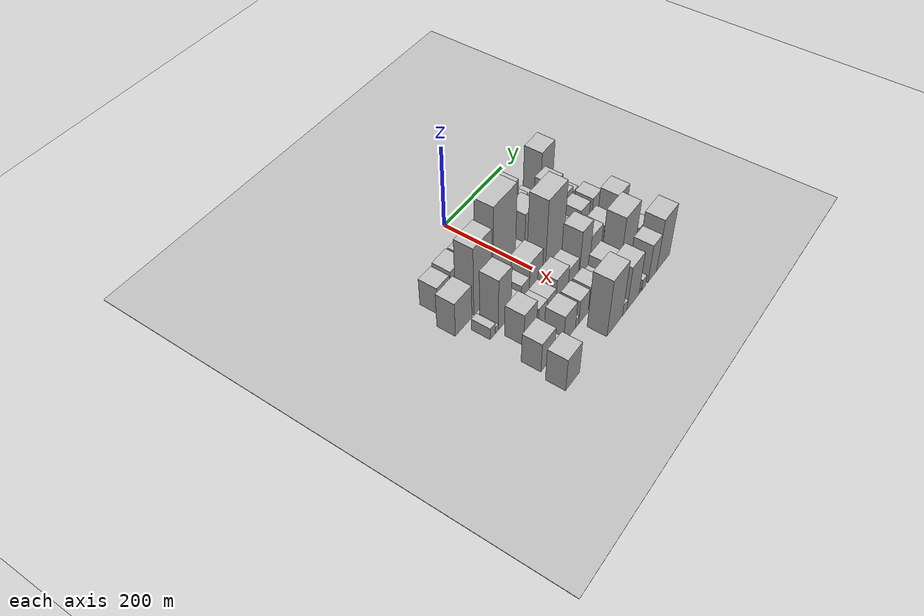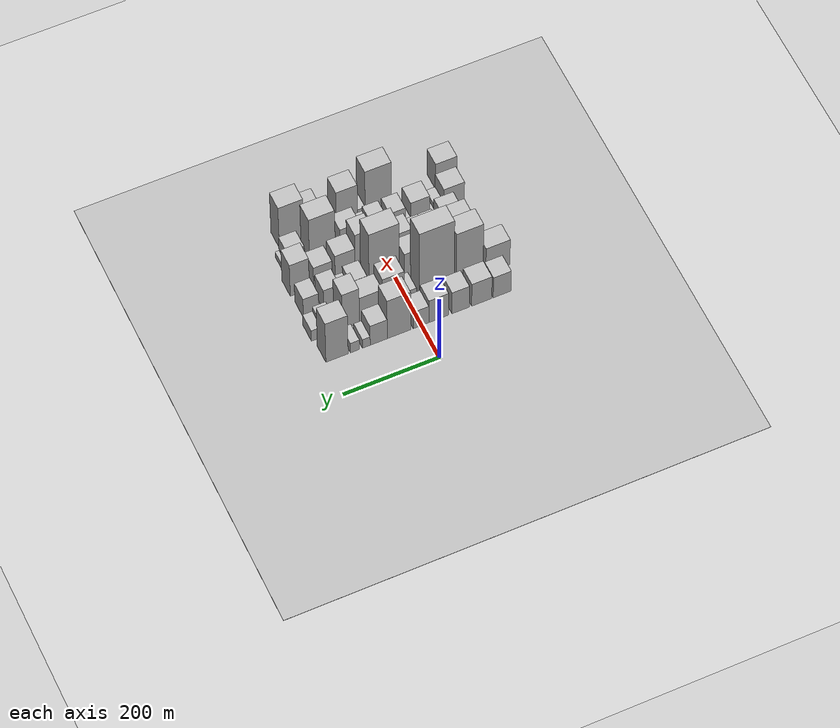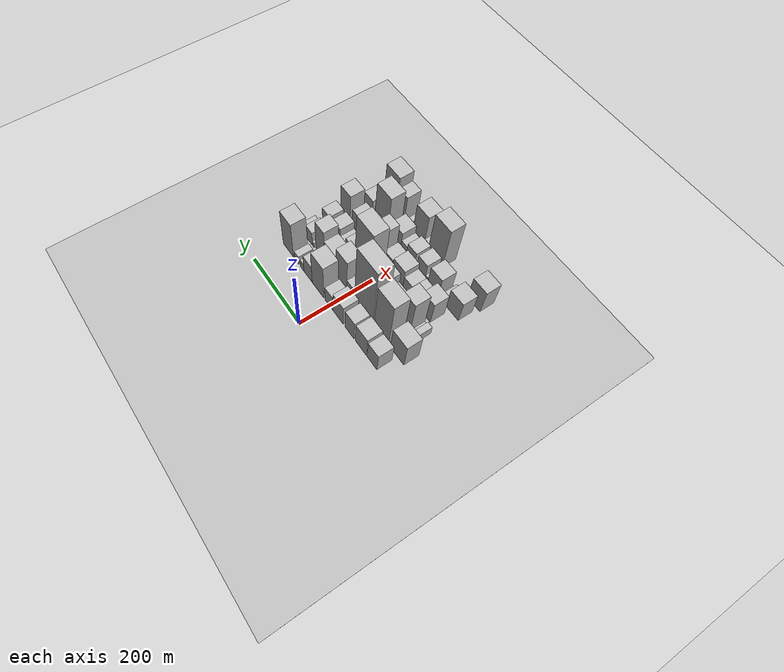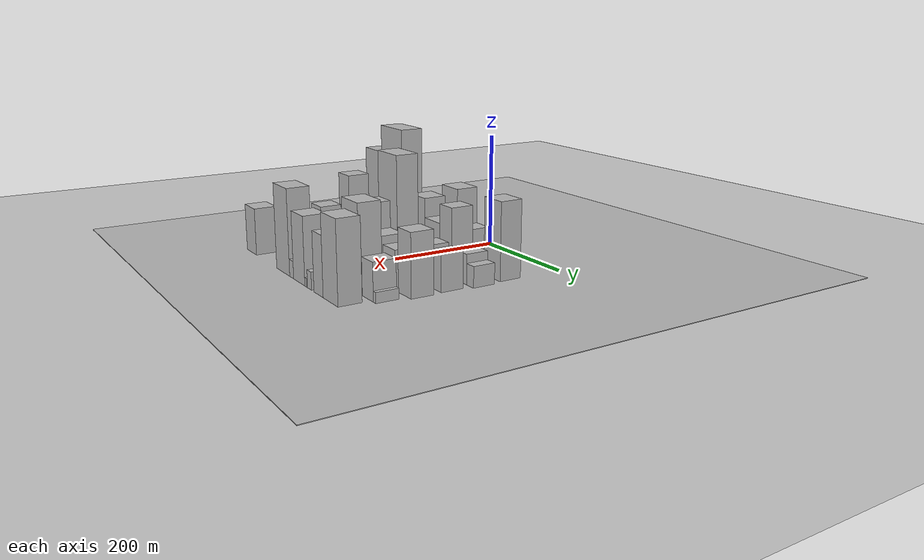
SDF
<sdf version="1.6">
 <world name="default">
  <include><name>ground_plane_1</name><uri>model://HANNAS_ground_plane</uri></include>
  <include>
   <name>ground_plane_2</name>
   <uri>model://HANNAS_ground_plane</uri>
   <pose>100 0 0  0 0 0</pose>
  </include>
  <model name="building_23">
   <static>1</static>
   <pose>100.0000 -168.3326 0 0.000000 0.000000 0.000000</pose>
   <link name="link">
    <pose>0 0 34.50 0 0 0</pose>
    <collision name="collision"><geometry><box><size>40.0000 37.5425 69.0000</size></box></geometry></collision>
    <visual name="visual">
     <cast_shadows>0</cast_shadows>
     <geometry><box><size>40.0000 37.5425 69.0000</size></box></geometry>
     <material>
      <script>
       <uri>model://HANNAS_wall/materials/scripts</uri>
       <uri>model://HANNAS_wall/materials/textures</uri>
       <name>vrc/HANNAS_wall</name>
      </script>
     </material>
    </visual>
   </link>
  </model>
  <model name="building_24">
   <static>1</static>
   <pose>100.0000 -125.3732 0 0.000000 0.000000 0.000000</pose>
   <link name="link">
    <pose>0 0 37.50 0 0 0</pose>
    <collision name="collision"><geometry><box><size>40.0000 42.3763 75.0000</size></box></geometry></collision>
    <visual name="visual">
     <cast_shadows>0</cast_shadows>
     <geometry><box><size>40.0000 42.3763 75.0000</size></box></geometry>
     <material>
      <script>
       <uri>model://HANNAS_wall/materials/scripts</uri>
       <uri>model://HANNAS_wall/materials/textures</uri>
       <name>vrc/HANNAS_wall</name>
      </script>
     </material>
    </visual>
   </link>
  </model>
  <model name="building_25">
   <static>1</static>
   <pose>100.0000 -81.0485 0 0.000000 0.000000 0.000000</pose>
   <link name="link">
    <pose>0 0 36.00 0 0 0</pose>
    <collision name="collision"><geometry><box><size>40.0000 36.2731 72.0000</size></box></geometry></collision>
    <visual name="visual">
     <cast_shadows>0</cast_shadows>
     <geometry><box><size>40.0000 36.2731 72.0000</size></box></geometry>
     <material>
      <script>
       <uri>model://HANNAS_wall/materials/scripts</uri>
       <uri>model://HANNAS_wall/materials/textures</uri>
       <name>vrc/HANNAS_wall</name>
      </script>
     </material>
    </visual>
   </link>
  </model>
  <model name="building_26">
   <static>1</static>
   <pose>100.0000 -35.1441 0 0.000000 0.000000 0.000000</pose>
   <link name="link">
    <pose>0 0 37.50 0 0 0</pose>
    <collision name="collision"><geometry><box><size>40.0000 41.5357 75.0000</size></box></geometry></collision>
    <visual name="visual">
     <cast_shadows>0</cast_shadows>
     <geometry><box><size>40.0000 41.5357 75.0000</size></box></geometry>
     <material>
      <script>
       <uri>model://HANNAS_wall/materials/scripts</uri>
       <uri>model://HANNAS_wall/materials/textures</uri>
       <name>vrc/HANNAS_wall</name>
      </script>
     </material>
    </visual>
   </link>
  </model>
  <model name="building_27">
   <static>1</static>
   <pose>100.0000 1.9660 0 0.000000 0.000000 0.000000</pose>
   <link name="link">
    <pose>0 0 28.50 0 0 0</pose>
    <collision name="collision"><geometry><box><size>40.0000 32.6845 57.0000</size></box></geometry></collision>
    <visual name="visual">
     <cast_shadows>0</cast_shadows>
     <geometry><box><size>40.0000 32.6845 57.0000</size></box></geometry>
     <material>
      <script>
       <uri>model://HANNAS_wall/materials/scripts</uri>
       <uri>model://HANNAS_wall/materials/textures</uri>
       <name>vrc/HANNAS_wall</name>
      </script>
     </material>
    </visual>
   </link>
  </model>
  <model name="building_28">
   <static>1</static>
   <pose>100.0000 47.9363 0 0.000000 0.000000 0.000000</pose>
   <link name="link">
    <pose>0 0 64.50 0 0 0</pose>
    <collision name="collision"><geometry><box><size>40.0000 49.2560 129.0000</size></box></geometry></collision>
    <visual name="visual">
     <cast_shadows>0</cast_shadows>
     <geometry><box><size>40.0000 49.2560 129.0000</size></box></geometry>
     <material>
      <script>
       <uri>model://HANNAS_wall/materials/scripts</uri>
       <uri>model://HANNAS_wall/materials/textures</uri>
       <name>vrc/HANNAS_wall</name>
      </script>
     </material>
    </visual>
   </link>
  </model>
  <model name="building_29">
   <static>1</static>
   <pose>100.0000 90.3240 0 0.000000 0.000000 0.000000</pose>
   <link name="link">
    <pose>0 0 33.00 0 0 0</pose>
    <collision name="collision"><geometry><box><size>40.0000 35.5196 66.0000</size></box></geometry></collision>
    <visual name="visual">
     <cast_shadows>0</cast_shadows>
     <geometry><box><size>40.0000 35.5196 66.0000</size></box></geometry>
     <material>
      <script>
       <uri>model://HANNAS_wall/materials/scripts</uri>
       <uri>model://HANNAS_wall/materials/textures</uri>
       <name>vrc/HANNAS_wall</name>
      </script>
     </material>
    </visual>
   </link>
  </model>
  <model name="building_30">
   <static>1</static>
   <pose>100.0000 116.0856 0 0.000000 0.000000 0.000000</pose>
   <link name="link">
    <pose>0 0 15.00 0 0 0</pose>
    <collision name="collision"><geometry><box><size>40.0000 16.0036 30.0000</size></box></geometry></collision>
    <visual name="visual">
     <cast_shadows>0</cast_shadows>
     <geometry><box><size>40.0000 16.0036 30.0000</size></box></geometry>
     <material>
      <script>
       <uri>model://HANNAS_wall/materials/scripts</uri>
       <uri>model://HANNAS_wall/materials/textures</uri>
       <name>vrc/HANNAS_wall</name>
      </script>
     </material>
    </visual>
   </link>
  </model>
  <model name="building_31">
   <static>1</static>
   <pose>100.0000 139.5563 0 0.000000 0.000000 0.000000</pose>
   <link name="link">
    <pose>0 0 16.50 0 0 0</pose>
    <collision name="collision"><geometry><box><size>40.0000 18.9379 33.0000</size></box></geometry></collision>
    <visual name="visual">
     <cast_shadows>0</cast_shadows>
     <geometry><box><size>40.0000 18.9379 33.0000</size></box></geometry>
     <material>
      <script>
       <uri>model://HANNAS_wall/materials/scripts</uri>
       <uri>model://HANNAS_wall/materials/textures</uri>
       <name>vrc/HANNAS_wall</name>
      </script>
     </material>
    </visual>
   </link>
  </model>
  <model name="building_32">
   <static>1</static>
   <pose>100.0000 177.0604 0 0.000000 0.000000 0.000000</pose>
   <link name="link">
    <pose>0 0 66.00 0 0 0</pose>
    <collision name="collision"><geometry><box><size>40.0000 46.0703 132.0000</size></box></geometry></collision>
    <visual name="visual">
     <cast_shadows>0</cast_shadows>
     <geometry><box><size>40.0000 46.0703 132.0000</size></box></geometry>
     <material>
      <script>
       <uri>model://HANNAS_wall/materials/scripts</uri>
       <uri>model://HANNAS_wall/materials/textures</uri>
       <name>vrc/HANNAS_wall</name>
      </script>
     </material>
    </visual>
   </link>
  </model>
  <model name="building_72">
   <static>1</static>
   <pose>155.0000 -185.1789 0 0.000000 0.000000 0.000000</pose>
   <link name="link">
    <pose>0 0 43.50 0 0 0</pose>
    <collision name="collision"><geometry><box><size>40.0000 50.8176 87.0000</size></box></geometry></collision>
    <visual name="visual">
     <cast_shadows>0</cast_shadows>
     <geometry><box><size>40.0000 50.8176 87.0000</size></box></geometry>
     <material>
      <script>
       <uri>model://HANNAS_wall/materials/scripts</uri>
       <uri>model://HANNAS_wall/materials/textures</uri>
       <name>vrc/HANNAS_wall</name>
      </script>
     </material>
    </visual>
   </link>
  </model>
  <model name="building_73">
   <static>1</static>
   <pose>155.0000 -125.4176 0 0.000000 0.000000 0.000000</pose>
   <link name="link">
    <pose>0 0 87.00 0 0 0</pose>
    <collision name="collision"><geometry><box><size>40.0000 56.7050 174.0000</size></box></geometry></collision>
    <visual name="visual">
     <cast_shadows>0</cast_shadows>
     <geometry><box><size>40.0000 56.7050 174.0000</size></box></geometry>
     <material>
      <script>
       <uri>model://HANNAS_wall/materials/scripts</uri>
       <uri>model://HANNAS_wall/materials/textures</uri>
       <name>vrc/HANNAS_wall</name>
      </script>
     </material>
    </visual>
   </link>
  </model>
  <model name="building_74">
   <static>1</static>
   <pose>155.0000 -56.3924 0 0.000000 0.000000 0.000000</pose>
   <link name="link">
    <pose>0 0 111.00 0 0 0</pose>
    <collision name="collision"><geometry><box><size>40.0000 73.3453 222.0000</size></box></geometry></collision>
    <visual name="visual">
     <cast_shadows>0</cast_shadows>
     <geometry><box><size>40.0000 73.3453 222.0000</size></box></geometry>
     <material>
      <script>
       <uri>model://HANNAS_wall/materials/scripts</uri>
       <uri>model://HANNAS_wall/materials/textures</uri>
       <name>vrc/HANNAS_wall</name>
      </script>
     </material>
    </visual>
   </link>
  </model>
  <model name="building_75">
   <static>1</static>
   <pose>155.0000 -0.9667 0 0.000000 0.000000 0.000000</pose>
   <link name="link">
    <pose>0 0 22.50 0 0 0</pose>
    <collision name="collision"><geometry><box><size>40.0000 25.5061 45.0000</size></box></geometry></collision>
    <visual name="visual">
     <cast_shadows>0</cast_shadows>
     <geometry><box><size>40.0000 25.5061 45.0000</size></box></geometry>
     <material>
      <script>
       <uri>model://HANNAS_wall/materials/scripts</uri>
       <uri>model://HANNAS_wall/materials/textures</uri>
       <name>vrc/HANNAS_wall</name>
      </script>
     </material>
    </visual>
   </link>
  </model>
  <model name="building_76">
   <static>1</static>
   <pose>155.0000 34.3568 0 0.000000 0.000000 0.000000</pose>
   <link name="link">
    <pose>0 0 58.50 0 0 0</pose>
    <collision name="collision"><geometry><box><size>40.0000 45.1409 117.0000</size></box></geometry></collision>
    <visual name="visual">
     <cast_shadows>0</cast_shadows>
     <geometry><box><size>40.0000 45.1409 117.0000</size></box></geometry>
     <material>
      <script>
       <uri>model://HANNAS_wall/materials/scripts</uri>
       <uri>model://HANNAS_wall/materials/textures</uri>
       <name>vrc/HANNAS_wall</name>
      </script>
     </material>
    </visual>
   </link>
  </model>
  <model name="building_77">
   <static>1</static>
   <pose>155.0000 81.2284 0 0.000000 0.000000 0.000000</pose>
   <link name="link">
    <pose>0 0 42.00 0 0 0</pose>
    <collision name="collision"><geometry><box><size>40.0000 48.6025 84.0000</size></box></geometry></collision>
    <visual name="visual">
     <cast_shadows>0</cast_shadows>
     <geometry><box><size>40.0000 48.6025 84.0000</size></box></geometry>
     <material>
      <script>
       <uri>model://HANNAS_wall/materials/scripts</uri>
       <uri>model://HANNAS_wall/materials/textures</uri>
       <name>vrc/HANNAS_wall</name>
      </script>
     </material>
    </visual>
   </link>
  </model>
  <model name="building_78">
   <static>1</static>
   <pose>155.0000 123.5292 0 0.000000 0.000000 0.000000</pose>
   <link name="link">
    <pose>0 0 58.50 0 0 0</pose>
    <collision name="collision"><geometry><box><size>40.0000 35.9991 117.0000</size></box></geometry></collision>
    <visual name="visual">
     <cast_shadows>0</cast_shadows>
     <geometry><box><size>40.0000 35.9991 117.0000</size></box></geometry>
     <material>
      <script>
       <uri>model://HANNAS_wall/materials/scripts</uri>
       <uri>model://HANNAS_wall/materials/textures</uri>
       <name>vrc/HANNAS_wall</name>
      </script>
     </material>
    </visual>
   </link>
  </model>
  <model name="building_79">
   <static>1</static>
   <pose>155.0000 153.4789 0 0.000000 0.000000 0.000000</pose>
   <link name="link">
    <pose>0 0 9.00 0 0 0</pose>
    <collision name="collision"><geometry><box><size>40.0000 7.9003 18.0000</size></box></geometry></collision>
    <visual name="visual">
     <cast_shadows>0</cast_shadows>
     <geometry><box><size>40.0000 7.9003 18.0000</size></box></geometry>
     <material>
      <script>
       <uri>model://HANNAS_wall/materials/scripts</uri>
       <uri>model://HANNAS_wall/materials/textures</uri>
       <name>vrc/HANNAS_wall</name>
      </script>
     </material>
    </visual>
   </link>
  </model>
  <model name="building_80">
   <static>1</static>
   <pose>155.0000 171.3089 0 0.000000 0.000000 0.000000</pose>
   <link name="link">
    <pose>0 0 25.50 0 0 0</pose>
    <collision name="collision"><geometry><box><size>40.0000 27.7598 51.0000</size></box></geometry></collision>
    <visual name="visual">
     <cast_shadows>0</cast_shadows>
     <geometry><box><size>40.0000 27.7598 51.0000</size></box></geometry>
     <material>
      <script>
       <uri>model://HANNAS_wall/materials/scripts</uri>
       <uri>model://HANNAS_wall/materials/textures</uri>
       <name>vrc/HANNAS_wall</name>
      </script>
     </material>
    </visual>
   </link>
  </model>
  <model name="building_81">
   <static>1</static>
   <pose>155.0000 195.3613 0 0.000000 0.000000 0.000000</pose>
   <link name="link">
    <pose>0 0 18.00 0 0 0</pose>
    <collision name="collision"><geometry><box><size>40.0000 20.3450 36.0000</size></box></geometry></collision>
    <visual name="visual">
     <cast_shadows>0</cast_shadows>
     <geometry><box><size>40.0000 20.3450 36.0000</size></box></geometry>
     <material>
      <script>
       <uri>model://HANNAS_wall/materials/scripts</uri>
       <uri>model://HANNAS_wall/materials/textures</uri>
       <name>vrc/HANNAS_wall</name>
      </script>
     </material>
    </visual>
   </link>
  </model>
  <model name="building_124">
   <static>1</static>
   <pose>210.0000 -174.3472 0 0.000000 0.000000 0.000000</pose>
   <link name="link">
    <pose>0 0 15.00 0 0 0</pose>
    <collision name="collision"><geometry><box><size>40.0000 16.2441 30.0000</size></box></geometry></collision>
    <visual name="visual">
     <cast_shadows>0</cast_shadows>
     <geometry><box><size>40.0000 16.2441 30.0000</size></box></geometry>
     <material>
      <script>
       <uri>model://HANNAS_wall/materials/scripts</uri>
       <uri>model://HANNAS_wall/materials/textures</uri>
       <name>vrc/HANNAS_wall</name>
      </script>
     </material>
    </visual>
   </link>
  </model>
  <model name="building_125">
   <static>1</static>
   <pose>210.0000 -161.7989 0 0.000000 0.000000 0.000000</pose>
   <link name="link">
    <pose>0 0 9.00 0 0 0</pose>
    <collision name="collision"><geometry><box><size>40.0000 8.8524 18.0000</size></box></geometry></collision>
    <visual name="visual">
     <cast_shadows>0</cast_shadows>
     <geometry><box><size>40.0000 8.8524 18.0000</size></box></geometry>
     <material>
      <script>
       <uri>model://HANNAS_wall/materials/scripts</uri>
       <uri>model://HANNAS_wall/materials/textures</uri>
       <name>vrc/HANNAS_wall</name>
      </script>
     </material>
    </visual>
   </link>
  </model>
  <model name="building_126">
   <static>1</static>
   <pose>210.0000 -137.2783 0 0.000000 0.000000 0.000000</pose>
   <link name="link">
    <pose>0 0 66.00 0 0 0</pose>
    <collision name="collision"><geometry><box><size>40.0000 40.1889 132.0000</size></box></geometry></collision>
    <visual name="visual">
     <cast_shadows>0</cast_shadows>
     <geometry><box><size>40.0000 40.1889 132.0000</size></box></geometry>
     <material>
      <script>
       <uri>model://HANNAS_wall/materials/scripts</uri>
       <uri>model://HANNAS_wall/materials/textures</uri>
       <name>vrc/HANNAS_wall</name>
      </script>
     </material>
    </visual>
   </link>
  </model>
  <model name="building_127">
   <static>1</static>
   <pose>210.0000 -103.2284 0 0.000000 0.000000 0.000000</pose>
   <link name="link">
    <pose>0 0 21.00 0 0 0</pose>
    <collision name="collision"><geometry><box><size>40.0000 21.9109 42.0000</size></box></geometry></collision>
    <visual name="visual">
     <cast_shadows>0</cast_shadows>
     <geometry><box><size>40.0000 21.9109 42.0000</size></box></geometry>
     <material>
      <script>
       <uri>model://HANNAS_wall/materials/scripts</uri>
       <uri>model://HANNAS_wall/materials/textures</uri>
       <name>vrc/HANNAS_wall</name>
      </script>
     </material>
    </visual>
   </link>
  </model>
  <model name="building_128">
   <static>1</static>
   <pose>210.0000 -70.9032 0 0.000000 0.000000 0.000000</pose>
   <link name="link">
    <pose>0 0 24.00 0 0 0</pose>
    <collision name="collision"><geometry><box><size>40.0000 26.7395 48.0000</size></box></geometry></collision>
    <visual name="visual">
     <cast_shadows>0</cast_shadows>
     <geometry><box><size>40.0000 26.7395 48.0000</size></box></geometry>
     <material>
      <script>
       <uri>model://HANNAS_wall/materials/scripts</uri>
       <uri>model://HANNAS_wall/materials/textures</uri>
       <name>vrc/HANNAS_wall</name>
      </script>
     </material>
    </visual>
   </link>
  </model>
  <model name="building_129">
   <static>1</static>
   <pose>210.0000 -35.4199 0 0.000000 0.000000 0.000000</pose>
   <link name="link">
    <pose>0 0 42.00 0 0 0</pose>
    <collision name="collision"><geometry><box><size>40.0000 44.2271 84.0000</size></box></geometry></collision>
    <visual name="visual">
     <cast_shadows>0</cast_shadows>
     <geometry><box><size>40.0000 44.2271 84.0000</size></box></geometry>
     <material>
      <script>
       <uri>model://HANNAS_wall/materials/scripts</uri>
       <uri>model://HANNAS_wall/materials/textures</uri>
       <name>vrc/HANNAS_wall</name>
      </script>
     </material>
    </visual>
   </link>
  </model>
  <model name="building_130">
   <static>1</static>
   <pose>210.0000 28.4545 0 0.000000 0.000000 0.000000</pose>
   <link name="link">
    <pose>0 0 97.50 0 0 0</pose>
    <collision name="collision"><geometry><box><size>40.0000 63.5218 195.0000</size></box></geometry></collision>
    <visual name="visual">
     <cast_shadows>0</cast_shadows>
     <geometry><box><size>40.0000 63.5218 195.0000</size></box></geometry>
     <material>
      <script>
       <uri>model://HANNAS_wall/materials/scripts</uri>
       <uri>model://HANNAS_wall/materials/textures</uri>
       <name>vrc/HANNAS_wall</name>
      </script>
     </material>
    </visual>
   </link>
  </model>
  <model name="building_131">
   <static>1</static>
   <pose>210.0000 81.2528 0 0.000000 0.000000 0.000000</pose>
   <link name="link">
    <pose>0 0 30.00 0 0 0</pose>
    <collision name="collision"><geometry><box><size>40.0000 34.0748 60.0000</size></box></geometry></collision>
    <visual name="visual">
     <cast_shadows>0</cast_shadows>
     <geometry><box><size>40.0000 34.0748 60.0000</size></box></geometry>
     <material>
      <script>
       <uri>model://HANNAS_wall/materials/scripts</uri>
       <uri>model://HANNAS_wall/materials/textures</uri>
       <name>vrc/HANNAS_wall</name>
      </script>
     </material>
    </visual>
   </link>
  </model>
  <model name="building_132">
   <static>1</static>
   <pose>210.0000 109.8791 0 0.000000 0.000000 0.000000</pose>
   <link name="link">
    <pose>0 0 19.50 0 0 0</pose>
    <collision name="collision"><geometry><box><size>40.0000 23.1778 39.0000</size></box></geometry></collision>
    <visual name="visual">
     <cast_shadows>0</cast_shadows>
     <geometry><box><size>40.0000 23.1778 39.0000</size></box></geometry>
     <material>
      <script>
       <uri>model://HANNAS_wall/materials/scripts</uri>
       <uri>model://HANNAS_wall/materials/textures</uri>
       <name>vrc/HANNAS_wall</name>
      </script>
     </material>
    </visual>
   </link>
  </model>
  <model name="building_133">
   <static>1</static>
   <pose>210.0000 138.4727 0 0.000000 0.000000 0.000000</pose>
   <link name="link">
    <pose>0 0 33.00 0 0 0</pose>
    <collision name="collision"><geometry><box><size>40.0000 34.0093 66.0000</size></box></geometry></collision>
    <visual name="visual">
     <cast_shadows>0</cast_shadows>
     <geometry><box><size>40.0000 34.0093 66.0000</size></box></geometry>
     <material>
      <script>
       <uri>model://HANNAS_wall/materials/scripts</uri>
       <uri>model://HANNAS_wall/materials/textures</uri>
       <name>vrc/HANNAS_wall</name>
      </script>
     </material>
    </visual>
   </link>
  </model>
  <model name="building_134">
   <static>1</static>
   <pose>210.0000 181.6205 0 0.000000 0.000000 0.000000</pose>
   <link name="link">
    <pose>0 0 31.50 0 0 0</pose>
    <collision name="collision"><geometry><box><size>40.0000 32.2865 63.0000</size></box></geometry></collision>
    <visual name="visual">
     <cast_shadows>0</cast_shadows>
     <geometry><box><size>40.0000 32.2865 63.0000</size></box></geometry>
     <material>
      <script>
       <uri>model://HANNAS_wall/materials/scripts</uri>
       <uri>model://HANNAS_wall/materials/textures</uri>
       <name>vrc/HANNAS_wall</name>
      </script>
     </material>
    </visual>
   </link>
  </model>
  <model name="building_178">
   <static>1</static>
   <pose>265.0000 -139.8502 0 0.000000 0.000000 0.000000</pose>
   <link name="link">
    <pose>0 0 40.50 0 0 0</pose>
    <collision name="collision"><geometry><box><size>40.0000 40.7836 81.0000</size></box></geometry></collision>
    <visual name="visual">
     <cast_shadows>0</cast_shadows>
     <geometry><box><size>40.0000 40.7836 81.0000</size></box></geometry>
     <material>
      <script>
       <uri>model://HANNAS_wall/materials/scripts</uri>
       <uri>model://HANNAS_wall/materials/textures</uri>
       <name>vrc/HANNAS_wall</name>
      </script>
     </material>
    </visual>
   </link>
  </model>
  <model name="building_179">
   <static>1</static>
   <pose>265.0000 -99.2414 0 0.000000 0.000000 0.000000</pose>
   <link name="link">
    <pose>0 0 25.50 0 0 0</pose>
    <collision name="collision"><geometry><box><size>40.0000 28.4341 51.0000</size></box></geometry></collision>
    <visual name="visual">
     <cast_shadows>0</cast_shadows>
     <geometry><box><size>40.0000 28.4341 51.0000</size></box></geometry>
     <material>
      <script>
       <uri>model://HANNAS_wall/materials/scripts</uri>
       <uri>model://HANNAS_wall/materials/textures</uri>
       <name>vrc/HANNAS_wall</name>
      </script>
     </material>
    </visual>
   </link>
  </model>
  <model name="building_180">
   <static>1</static>
   <pose>265.0000 -70.0135 0 0.000000 0.000000 0.000000</pose>
   <link name="link">
    <pose>0 0 25.50 0 0 0</pose>
    <collision name="collision"><geometry><box><size>40.0000 30.0217 51.0000</size></box></geometry></collision>
    <visual name="visual">
     <cast_shadows>0</cast_shadows>
     <geometry><box><size>40.0000 30.0217 51.0000</size></box></geometry>
     <material>
      <script>
       <uri>model://HANNAS_wall/materials/scripts</uri>
       <uri>model://HANNAS_wall/materials/textures</uri>
       <name>vrc/HANNAS_wall</name>
      </script>
     </material>
    </visual>
   </link>
  </model>
  <model name="building_181">
   <static>1</static>
   <pose>265.0000 -33.7156 0 0.000000 0.000000 0.000000</pose>
   <link name="link">
    <pose>0 0 36.00 0 0 0</pose>
    <collision name="collision"><geometry><box><size>40.0000 42.5743 72.0000</size></box></geometry></collision>
    <visual name="visual">
     <cast_shadows>0</cast_shadows>
     <geometry><box><size>40.0000 42.5743 72.0000</size></box></geometry>
     <material>
      <script>
       <uri>model://HANNAS_wall/materials/scripts</uri>
       <uri>model://HANNAS_wall/materials/textures</uri>
       <name>vrc/HANNAS_wall</name>
      </script>
     </material>
    </visual>
   </link>
  </model>
  <model name="building_182">
   <static>1</static>
   <pose>265.0000 5.3606 0 0.000000 0.000000 0.000000</pose>
   <link name="link">
    <pose>0 0 30.00 0 0 0</pose>
    <collision name="collision"><geometry><box><size>40.0000 35.5782 60.0000</size></box></geometry></collision>
    <visual name="visual">
     <cast_shadows>0</cast_shadows>
     <geometry><box><size>40.0000 35.5782 60.0000</size></box></geometry>
     <material>
      <script>
       <uri>model://HANNAS_wall/materials/scripts</uri>
       <uri>model://HANNAS_wall/materials/textures</uri>
       <name>vrc/HANNAS_wall</name>
      </script>
     </material>
    </visual>
   </link>
  </model>
  <model name="building_183">
   <static>1</static>
   <pose>265.0000 45.8746 0 0.000000 0.000000 0.000000</pose>
   <link name="link">
    <pose>0 0 61.50 0 0 0</pose>
    <collision name="collision"><geometry><box><size>40.0000 37.4498 123.0000</size></box></geometry></collision>
    <visual name="visual">
     <cast_shadows>0</cast_shadows>
     <geometry><box><size>40.0000 37.4498 123.0000</size></box></geometry>
     <material>
      <script>
       <uri>model://HANNAS_wall/materials/scripts</uri>
       <uri>model://HANNAS_wall/materials/textures</uri>
       <name>vrc/HANNAS_wall</name>
      </script>
     </material>
    </visual>
   </link>
  </model>
  <model name="building_184">
   <static>1</static>
   <pose>265.0000 85.6235 0 0.000000 0.000000 0.000000</pose>
   <link name="link">
    <pose>0 0 39.00 0 0 0</pose>
    <collision name="collision"><geometry><box><size>40.0000 42.0480 78.0000</size></box></geometry></collision>
    <visual name="visual">
     <cast_shadows>0</cast_shadows>
     <geometry><box><size>40.0000 42.0480 78.0000</size></box></geometry>
     <material>
      <script>
       <uri>model://HANNAS_wall/materials/scripts</uri>
       <uri>model://HANNAS_wall/materials/textures</uri>
       <name>vrc/HANNAS_wall</name>
      </script>
     </material>
    </visual>
   </link>
  </model>
  <model name="building_185">
   <static>1</static>
   <pose>265.0000 132.1703 0 0.000000 0.000000 0.000000</pose>
   <link name="link">
    <pose>0 0 33.00 0 0 0</pose>
    <collision name="collision"><geometry><box><size>40.0000 39.0456 66.0000</size></box></geometry></collision>
    <visual name="visual">
     <cast_shadows>0</cast_shadows>
     <geometry><box><size>40.0000 39.0456 66.0000</size></box></geometry>
     <material>
      <script>
       <uri>model://HANNAS_wall/materials/scripts</uri>
       <uri>model://HANNAS_wall/materials/textures</uri>
       <name>vrc/HANNAS_wall</name>
      </script>
     </material>
    </visual>
   </link>
  </model>
  <model name="building_186">
   <static>1</static>
   <pose>265.0000 180.6248 0 0.000000 0.000000 0.000000</pose>
   <link name="link">
    <pose>0 0 52.50 0 0 0</pose>
    <collision name="collision"><geometry><box><size>40.0000 39.8634 105.0000</size></box></geometry></collision>
    <visual name="visual">
     <cast_shadows>0</cast_shadows>
     <geometry><box><size>40.0000 39.8634 105.0000</size></box></geometry>
     <material>
      <script>
       <uri>model://HANNAS_wall/materials/scripts</uri>
       <uri>model://HANNAS_wall/materials/textures</uri>
       <name>vrc/HANNAS_wall</name>
      </script>
     </material>
    </visual>
   </link>
  </model>
  <model name="building_227">
   <static>1</static>
   <pose>320.0000 -169.4992 0 0.000000 0.000000 0.000000</pose>
   <link name="link">
    <pose>0 0 37.50 0 0 0</pose>
    <collision name="collision"><geometry><box><size>40.0000 43.8304 75.0000</size></box></geometry></collision>
    <visual name="visual">
     <cast_shadows>0</cast_shadows>
     <geometry><box><size>40.0000 43.8304 75.0000</size></box></geometry>
     <material>
      <script>
       <uri>model://HANNAS_wall/materials/scripts</uri>
       <uri>model://HANNAS_wall/materials/textures</uri>
       <name>vrc/HANNAS_wall</name>
      </script>
     </material>
    </visual>
   </link>
  </model>
  <model name="building_228">
   <static>1</static>
   <pose>320.0000 -137.8124 0 0.000000 0.000000 0.000000</pose>
   <link name="link">
    <pose>0 0 16.50 0 0 0</pose>
    <collision name="collision"><geometry><box><size>40.0000 19.5433 33.0000</size></box></geometry></collision>
    <visual name="visual">
     <cast_shadows>0</cast_shadows>
     <geometry><box><size>40.0000 19.5433 33.0000</size></box></geometry>
     <material>
      <script>
       <uri>model://HANNAS_wall/materials/scripts</uri>
       <uri>model://HANNAS_wall/materials/textures</uri>
       <name>vrc/HANNAS_wall</name>
      </script>
     </material>
    </visual>
   </link>
  </model>
  <model name="building_229">
   <static>1</static>
   <pose>320.0000 -124.4296 0 0.000000 0.000000 0.000000</pose>
   <link name="link">
    <pose>0 0 9.00 0 0 0</pose>
    <collision name="collision"><geometry><box><size>40.0000 7.2221 18.0000</size></box></geometry></collision>
    <visual name="visual">
     <cast_shadows>0</cast_shadows>
     <geometry><box><size>40.0000 7.2221 18.0000</size></box></geometry>
     <material>
      <script>
       <uri>model://HANNAS_wall/materials/scripts</uri>
       <uri>model://HANNAS_wall/materials/textures</uri>
       <name>vrc/HANNAS_wall</name>
      </script>
     </material>
    </visual>
   </link>
  </model>
  <model name="building_230">
   <static>1</static>
   <pose>320.0000 -97.5780 0 0.000000 0.000000 0.000000</pose>
   <link name="link">
    <pose>0 0 36.00 0 0 0</pose>
    <collision name="collision"><geometry><box><size>40.0000 40.4811 72.0000</size></box></geometry></collision>
    <visual name="visual">
     <cast_shadows>0</cast_shadows>
     <geometry><box><size>40.0000 40.4811 72.0000</size></box></geometry>
     <material>
      <script>
       <uri>model://HANNAS_wall/materials/scripts</uri>
       <uri>model://HANNAS_wall/materials/textures</uri>
       <name>vrc/HANNAS_wall</name>
      </script>
     </material>
    </visual>
   </link>
  </model>
  <model name="building_231">
   <static>1</static>
   <pose>320.0000 -71.8600 0 0.000000 0.000000 0.000000</pose>
   <link name="link">
    <pose>0 0 12.00 0 0 0</pose>
    <collision name="collision"><geometry><box><size>40.0000 10.9549 24.0000</size></box></geometry></collision>
    <visual name="visual">
     <cast_shadows>0</cast_shadows>
     <geometry><box><size>40.0000 10.9549 24.0000</size></box></geometry>
     <material>
      <script>
       <uri>model://HANNAS_wall/materials/scripts</uri>
       <uri>model://HANNAS_wall/materials/textures</uri>
       <name>vrc/HANNAS_wall</name>
      </script>
     </material>
    </visual>
   </link>
  </model>
  <model name="building_232">
   <static>1</static>
   <pose>320.0000 -49.9002 0 0.000000 0.000000 0.000000</pose>
   <link name="link">
    <pose>0 0 31.50 0 0 0</pose>
    <collision name="collision"><geometry><box><size>40.0000 32.9649 63.0000</size></box></geometry></collision>
    <visual name="visual">
     <cast_shadows>0</cast_shadows>
     <geometry><box><size>40.0000 32.9649 63.0000</size></box></geometry>
     <material>
      <script>
       <uri>model://HANNAS_wall/materials/scripts</uri>
       <uri>model://HANNAS_wall/materials/textures</uri>
       <name>vrc/HANNAS_wall</name>
      </script>
     </material>
    </visual>
   </link>
  </model>
  <model name="building_233">
   <static>1</static>
   <pose>320.0000 -9.7291 0 0.000000 0.000000 0.000000</pose>
   <link name="link">
    <pose>0 0 30.00 0 0 0</pose>
    <collision name="collision"><geometry><box><size>40.0000 33.3773 60.0000</size></box></geometry></collision>
    <visual name="visual">
     <cast_shadows>0</cast_shadows>
     <geometry><box><size>40.0000 33.3773 60.0000</size></box></geometry>
     <material>
      <script>
       <uri>model://HANNAS_wall/materials/scripts</uri>
       <uri>model://HANNAS_wall/materials/textures</uri>
       <name>vrc/HANNAS_wall</name>
      </script>
     </material>
    </visual>
   </link>
  </model>
  <model name="building_234">
   <static>1</static>
   <pose>320.0000 18.2611 0 0.000000 0.000000 0.000000</pose>
   <link name="link">
    <pose>0 0 22.50 0 0 0</pose>
    <collision name="collision"><geometry><box><size>40.0000 22.6030 45.0000</size></box></geometry></collision>
    <visual name="visual">
     <cast_shadows>0</cast_shadows>
     <geometry><box><size>40.0000 22.6030 45.0000</size></box></geometry>
     <material>
      <script>
       <uri>model://HANNAS_wall/materials/scripts</uri>
       <uri>model://HANNAS_wall/materials/textures</uri>
       <name>vrc/HANNAS_wall</name>
      </script>
     </material>
    </visual>
   </link>
  </model>
  <model name="building_235">
   <static>1</static>
   <pose>320.0000 50.5598 0 0.000000 0.000000 0.000000</pose>
   <link name="link">
    <pose>0 0 36.00 0 0 0</pose>
    <collision name="collision"><geometry><box><size>40.0000 41.9944 72.0000</size></box></geometry></collision>
    <visual name="visual">
     <cast_shadows>0</cast_shadows>
     <geometry><box><size>40.0000 41.9944 72.0000</size></box></geometry>
     <material>
      <script>
       <uri>model://HANNAS_wall/materials/scripts</uri>
       <uri>model://HANNAS_wall/materials/textures</uri>
       <name>vrc/HANNAS_wall</name>
      </script>
     </material>
    </visual>
   </link>
  </model>
  <model name="building_236">
   <static>1</static>
   <pose>320.0000 108.7193 0 0.000000 0.000000 0.000000</pose>
   <link name="link">
    <pose>0 0 72.00 0 0 0</pose>
    <collision name="collision"><geometry><box><size>40.0000 54.3248 144.0000</size></box></geometry></collision>
    <visual name="visual">
     <cast_shadows>0</cast_shadows>
     <geometry><box><size>40.0000 54.3248 144.0000</size></box></geometry>
     <material>
      <script>
       <uri>model://HANNAS_wall/materials/scripts</uri>
       <uri>model://HANNAS_wall/materials/textures</uri>
       <name>vrc/HANNAS_wall</name>
      </script>
     </material>
    </visual>
   </link>
  </model>
  <model name="building_237">
   <static>1</static>
   <pose>320.0000 163.9532 0 0.000000 0.000000 0.000000</pose>
   <link name="link">
    <pose>0 0 31.50 0 0 0</pose>
    <collision name="collision"><geometry><box><size>40.0000 36.1428 63.0000</size></box></geometry></collision>
    <visual name="visual">
     <cast_shadows>0</cast_shadows>
     <geometry><box><size>40.0000 36.1428 63.0000</size></box></geometry>
     <material>
      <script>
       <uri>model://HANNAS_wall/materials/scripts</uri>
       <uri>model://HANNAS_wall/materials/textures</uri>
       <name>vrc/HANNAS_wall</name>
      </script>
     </material>
    </visual>
   </link>
  </model>
  <model name="building_238">
   <static>1</static>
   <pose>320.0000 186.1406 0 0.000000 0.000000 0.000000</pose>
   <link name="link">
    <pose>0 0 9.00 0 0 0</pose>
    <collision name="collision"><geometry><box><size>40.0000 8.2321 18.0000</size></box></geometry></collision>
    <visual name="visual">
     <cast_shadows>0</cast_shadows>
     <geometry><box><size>40.0000 8.2321 18.0000</size></box></geometry>
     <material>
      <script>
       <uri>model://HANNAS_wall/materials/scripts</uri>
       <uri>model://HANNAS_wall/materials/textures</uri>
       <name>vrc/HANNAS_wall</name>
      </script>
     </material>
    </visual>
   </link>
  </model>
  <model name="building_279">
   <static>1</static>
   <pose>375.0000 -178.1618 0 0.000000 0.000000 0.000000</pose>
   <link name="link">
    <pose>0 0 42.00 0 0 0</pose>
    <collision name="collision"><geometry><box><size>40.0000 45.5878 84.0000</size></box></geometry></collision>
    <visual name="visual">
     <cast_shadows>0</cast_shadows>
     <geometry><box><size>40.0000 45.5878 84.0000</size></box></geometry>
     <material>
      <script>
       <uri>model://HANNAS_wall/materials/scripts</uri>
       <uri>model://HANNAS_wall/materials/textures</uri>
       <name>vrc/HANNAS_wall</name>
      </script>
     </material>
    </visual>
   </link>
  </model>
  <model name="building_280">
   <static>1</static>
   <pose>375.0000 -34.0270 0 0.000000 0.000000 0.000000</pose>
   <link name="link">
    <pose>0 0 73.50 0 0 0</pose>
    <collision name="collision"><geometry><box><size>40.0000 55.5606 147.0000</size></box></geometry></collision>
    <visual name="visual">
     <cast_shadows>0</cast_shadows>
     <geometry><box><size>40.0000 55.5606 147.0000</size></box></geometry>
     <material>
      <script>
       <uri>model://HANNAS_wall/materials/scripts</uri>
       <uri>model://HANNAS_wall/materials/textures</uri>
       <name>vrc/HANNAS_wall</name>
      </script>
     </material>
    </visual>
   </link>
  </model>
  <model name="building_281">
   <static>1</static>
   <pose>375.0000 1.7797 0 0.000000 0.000000 0.000000</pose>
   <link name="link">
    <pose>0 0 15.00 0 0 0</pose>
    <collision name="collision"><geometry><box><size>40.0000 16.0528 30.0000</size></box></geometry></collision>
    <visual name="visual">
     <cast_shadows>0</cast_shadows>
     <geometry><box><size>40.0000 16.0528 30.0000</size></box></geometry>
     <material>
      <script>
       <uri>model://HANNAS_wall/materials/scripts</uri>
       <uri>model://HANNAS_wall/materials/textures</uri>
       <name>vrc/HANNAS_wall</name>
      </script>
     </material>
    </visual>
   </link>
  </model>
  <model name="building_282">
   <static>1</static>
   <pose>375.0000 32.2552 0 0.000000 0.000000 0.000000</pose>
   <link name="link">
    <pose>0 0 57.00 0 0 0</pose>
    <collision name="collision"><geometry><box><size>40.0000 44.8980 114.0000</size></box></geometry></collision>
    <visual name="visual">
     <cast_shadows>0</cast_shadows>
     <geometry><box><size>40.0000 44.8980 114.0000</size></box></geometry>
     <material>
      <script>
       <uri>model://HANNAS_wall/materials/scripts</uri>
       <uri>model://HANNAS_wall/materials/textures</uri>
       <name>vrc/HANNAS_wall</name>
      </script>
     </material>
    </visual>
   </link>
  </model>
  <model name="building_283">
   <static>1</static>
   <pose>375.0000 58.2564 0 0.000000 0.000000 0.000000</pose>
   <link name="link">
    <pose>0 0 7.50 0 0 0</pose>
    <collision name="collision"><geometry><box><size>40.0000 7.1044 15.0000</size></box></geometry></collision>
    <visual name="visual">
     <cast_shadows>0</cast_shadows>
     <geometry><box><size>40.0000 7.1044 15.0000</size></box></geometry>
     <material>
      <script>
       <uri>model://HANNAS_wall/materials/scripts</uri>
       <uri>model://HANNAS_wall/materials/textures</uri>
       <name>vrc/HANNAS_wall</name>
      </script>
     </material>
    </visual>
   </link>
  </model>
  <model name="building_284">
   <static>1</static>
   <pose>375.0000 72.5705 0 0.000000 0.000000 0.000000</pose>
   <link name="link">
    <pose>0 0 15.00 0 0 0</pose>
    <collision name="collision"><geometry><box><size>40.0000 15.5238 30.0000</size></box></geometry></collision>
    <visual name="visual">
     <cast_shadows>0</cast_shadows>
     <geometry><box><size>40.0000 15.5238 30.0000</size></box></geometry>
     <material>
      <script>
       <uri>model://HANNAS_wall/materials/scripts</uri>
       <uri>model://HANNAS_wall/materials/textures</uri>
       <name>vrc/HANNAS_wall</name>
      </script>
     </material>
    </visual>
   </link>
  </model>
  <model name="building_285">
   <static>1</static>
   <pose>375.0000 106.2369 0 0.000000 0.000000 0.000000</pose>
   <link name="link">
    <pose>0 0 49.50 0 0 0</pose>
    <collision name="collision"><geometry><box><size>40.0000 33.8090 99.0000</size></box></geometry></collision>
    <visual name="visual">
     <cast_shadows>0</cast_shadows>
     <geometry><box><size>40.0000 33.8090 99.0000</size></box></geometry>
     <material>
      <script>
       <uri>model://HANNAS_wall/materials/scripts</uri>
       <uri>model://HANNAS_wall/materials/textures</uri>
       <name>vrc/HANNAS_wall</name>
      </script>
     </material>
    </visual>
   </link>
  </model>
  <model name="building_286">
   <static>1</static>
   <pose>375.0000 148.9880 0 0.000000 0.000000 0.000000</pose>
   <link name="link">
    <pose>0 0 67.50 0 0 0</pose>
    <collision name="collision"><geometry><box><size>40.0000 51.6932 135.0000</size></box></geometry></collision>
    <visual name="visual">
     <cast_shadows>0</cast_shadows>
     <geometry><box><size>40.0000 51.6932 135.0000</size></box></geometry>
     <material>
      <script>
       <uri>model://HANNAS_wall/materials/scripts</uri>
       <uri>model://HANNAS_wall/materials/textures</uri>
       <name>vrc/HANNAS_wall</name>
      </script>
     </material>
    </visual>
   </link>
  </model>
 </world>
</sdf>
